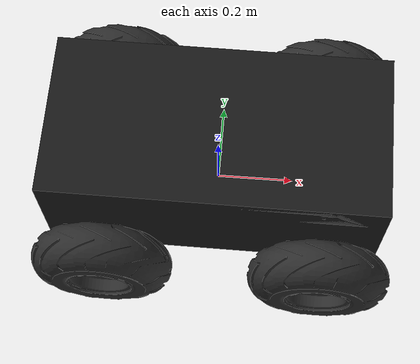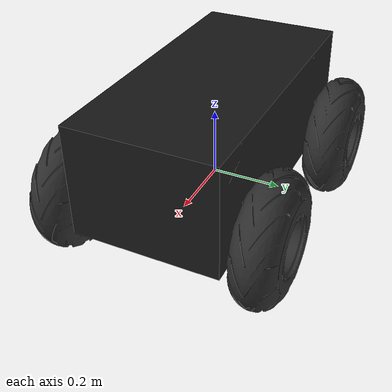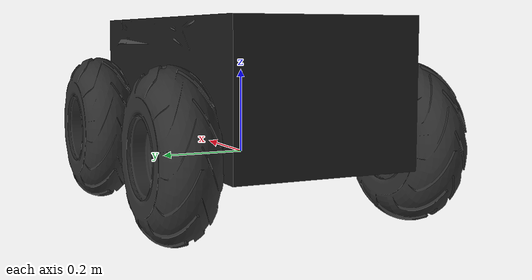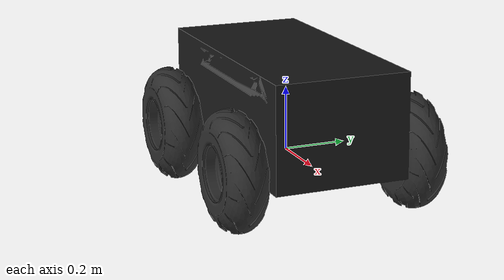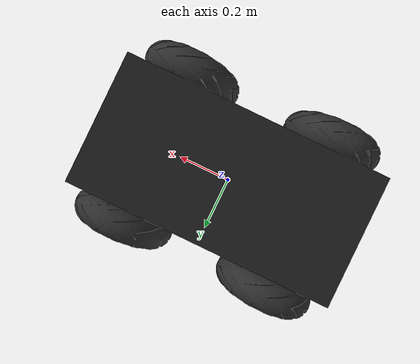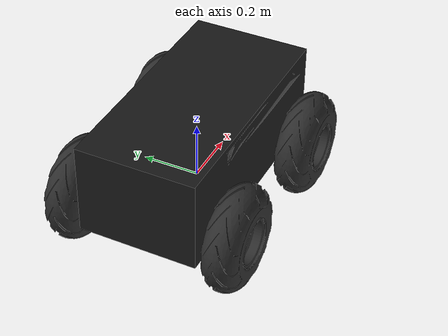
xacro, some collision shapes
<?xml version="1.0"?>
<robot name="bulldog_robot" xmlns:xacro="http://ros.org/wiki/xacro">

  <xacro:arg name="laser_enabled" default="false" />
  <xacro:arg name="ur5_enabled" default="false" />

  <xacro:include filename="$(find bulldog_description)/urdf/bulldog/bulldog.urdf.xacro" />
  <xacro:include filename="$(find bulldog_description)/urdf/accessories/plates.urdf.xacro" />

  <xacro:bulldog_robot />

</robot>

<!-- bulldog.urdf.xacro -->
<robot name="bulldog_robot" xmlns:xacro="http://ros.org/wiki/xacro">

  <xacro:include filename="$(find bulldog_description)/urdf/bulldog/wheel.urdf.xacro" />
  <xacro:include filename="$(find bulldog_description)/urdf/bulldog/materials.xacro" />

  <property name="M_PI" value="3.141592654"/>
  <xacro:property name="wheel_length" value="0.142" />
  <xacro:property name="wheel_radius" value="0.183" />

  <property name="base_x_size" value="0.85" />
  <property name="base_y_size" value="0.42" />
  <property name="base_z_size" value="0.325" />

  <xacro:macro name="bulldog_robot">
  <link name="base_link">
    <visual>
      <origin xyz="0 0 0" rpy="0 0 0" />
      <geometry>
        <mesh filename="package://bulldog_description/meshes/base_link.stl" />
      </geometry>
      <material name="flat_black" />
    </visual>
    <collision>
      <origin xyz="0 0 ${base_z_size/2.0}" rpy="0 0 0" />
      <geometry>
        <box size="${base_x_size} ${base_y_size} ${base_z_size}"/>
      </geometry>
    </collision>
  </link>
  <gazebo reference="base_link">
    <material>Gazebo/FlatBlack</material>
  </gazebo>

  <link name="inertial_link">
    <inertial>
      <mass value="40" />
      <origin xyz="0 0 0.1" />
      <inertia ixx="0.7" ixy="-0.03" ixz="-0.15" iyy="2" iyz="-0.01" izz="4" />
    </inertial>
  </link>
  <joint name="inertial_joint" type="fixed">
    <origin xyz="0 0 0" rpy="0 0 0" />
    <parent link="base_link" />
    <child link="inertial_link" />
  </joint>

  <link name="top_plate_link">
    <visual>
      <origin xyz="0 0 0" rpy="0 0 0" />
      <geometry>
        <mesh filename="package://bulldog_description/meshes/top_plate.stl" />
      </geometry>
      <material name="grey" />
    </visual>
  </link>
  <gazebo reference="top_plate_link">
    <material>Gazebo/Grey</material>
  </gazebo>

  <joint name="top_plate_joint" type="fixed">
    <origin xyz="0.07937 0 0.253" rpy="0 0 0" />
    <parent link="base_link" />
    <child link="top_plate_link" />
  </joint>

  <link name="imu_link"/>
  <joint name="imu_joint" type="fixed">
    <origin xyz="0 0 0" rpy="0 0 0" />
    <parent link="base_link" />
    <child link="imu_link" />
  </joint>
  <gazebo reference="imu_link" />

  <link name="rslidar"/>
  <joint name="rslidar_joint" type="fixed">
    <origin xyz="-0.045 0 0.6" rpy="0 0 0" />
    <parent link="base_link" />
    <child link="rslidar" />
  </joint>
  <gazebo reference="rslidar" />

  <xacro:bulldog_wheel wheel_prefix="front_left">
    <origin xyz="0.27937 0.285 0.0435" rpy="0 0 0" />
  </xacro:bulldog_wheel>
  <xacro:bulldog_wheel wheel_prefix="front_right">
    <origin xyz="0.27937 -0.285 0.0435" rpy="0 0 0" />
  </xacro:bulldog_wheel>
  <xacro:bulldog_wheel wheel_prefix="rear_left">
    <origin xyz="-0.27937 0.285 0.0435" rpy="0 0 0" />
  </xacro:bulldog_wheel>
  <xacro:bulldog_wheel wheel_prefix="rear_right">
    <origin xyz="-0.27937 -0.285 0.0435" rpy="0 0 0" />
  </xacro:bulldog_wheel>

  </xacro:macro>
</robot>

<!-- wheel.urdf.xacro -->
<robot name="bulldog_wheel" xmlns:xacro="http://ros.org/wiki/xacro">

  <xacro:macro name="bulldog_wheel" params="wheel_prefix *joint_pose">

  <link name="${wheel_prefix}_wheel_link">
    <inertial>
      <mass value="3" />
      <origin xyz="0 0 0" />
      <inertia  ixx="0.025" ixy="0" ixz="0" iyy="0.025" iyz="0" izz="0.045" />
    </inertial>
    <visual>
      <origin xyz="0 0 0" rpy="0 0 0" />
      <geometry>
        <mesh filename="package://bulldog_description/meshes/wheel.stl" />
      </geometry>
      <material name="dark_grey" />
    </visual>
    <collision>
      <origin xyz="0 0 0" rpy="${M_PI/2} 0 0" />
      <geometry>
        <cylinder length="${wheel_length}" radius="${wheel_radius}" />
      </geometry>
    </collision>
  </link>

  <gazebo reference="${wheel_prefix}_wheel_link">
    <mu1 value="1.0"/>
    <mu2 value="1.0"/>
    <kp value="10000000.0" />
    <kd value="1.0" />
    <fdir1 value="1 0 0"/>
    <material>Gazebo/DarkGrey</material>
  </gazebo>

  <joint name="${wheel_prefix}_wheel_joint" type="continuous">
    <parent link="base_link"/>
    <child link="${wheel_prefix}_wheel_link"/>
    <xacro:insert_block name="joint_pose"/>
    <axis xyz="0 1 0" rpy="0 0 0" />
  </joint>

  <transmission name="${wheel_prefix}_wheel_trans" type="SimpleTransmission">
    <type>transmission_interface/SimpleTransmission</type>
    <actuator name="${wheel_prefix}_wheel_motor">
      <mechanicalReduction>1</mechanicalReduction>
    </actuator>
    <joint name="${wheel_prefix}_wheel_joint">
      <hardwareInterface>VelocityJointInterface</hardwareInterface>
    </joint>
  </transmission>

  </xacro:macro>
</robot>

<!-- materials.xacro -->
<robot>

  <material name="black">
    <color rgba="0 0 0 1.0"/>
  </material>

  <material name="flat_black">
    <color rgba="0.1 0.1 0.1 1.0"/>
  </material>

  <material name="dark_grey">
    <color rgba="0.175 0.175 0.175 1.0"/>
  </material>

  <material name="grey">
    <color rgba="0.3 0.3 0.3 1" />
  </material>

</robot>
